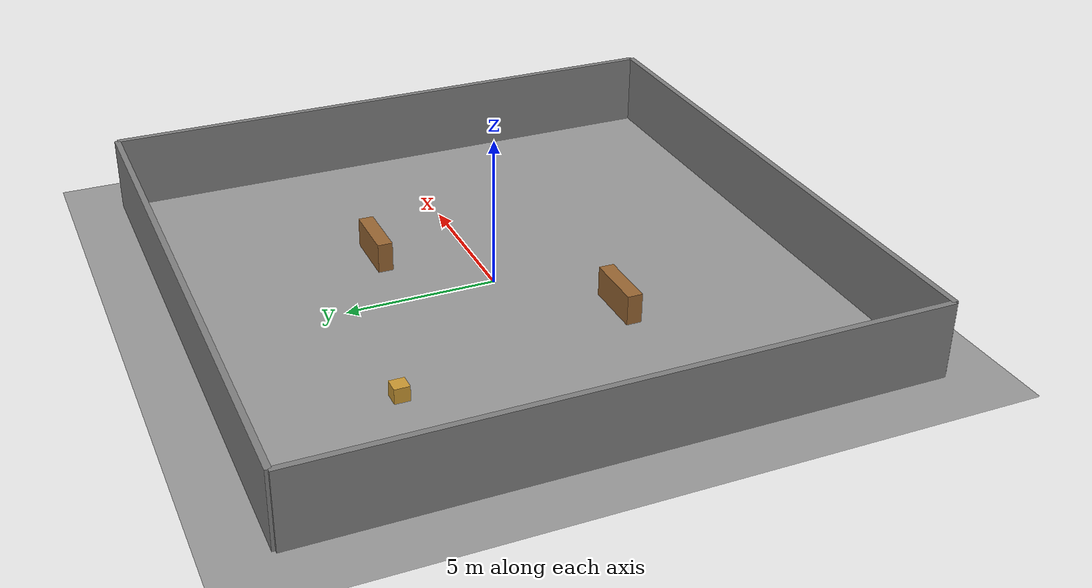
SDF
<?xml version="1.0" ?>
<sdf version="1.6">
  <world name="warehouse">
    <!-- Physics -->
    <physics type="ode">
      <real_time_update_rate>1000.0</real_time_update_rate>
      <max_step_size>0.001</max_step_size>
      <real_time_factor>1</real_time_factor>
    </physics>

    <!-- Scene -->
    <scene>
      <ambient>0.4 0.4 0.4 1</ambient>
      <background>0.7 0.7 0.7 1</background>
      <shadows>true</shadows>
    </scene>

    <!-- Light -->
    <light name="sun" type="directional">
      <cast_shadows>true</cast_shadows>
      <pose>0 0 10 0 0 0</pose>
      <diffuse>0.8 0.8 0.8 1</diffuse>
      <specular>0.2 0.2 0.2 1</specular>
      <direction>-0.5 0.1 -0.9</direction>
    </light>

    <!-- Indoor lights -->
    <light name="ceiling_light_1" type="point">
      <pose>5 5 3 0 0 0</pose>
      <diffuse>0.7 0.7 0.7 1</diffuse>
      <specular>0.1 0.1 0.1 1</specular>
      <attenuation>
        <range>20</range>
        <constant>0.5</constant>
        <linear>0.01</linear>
        <quadratic>0.001</quadratic>
      </attenuation>
    </light>

    <!-- Ground Plane -->
    <model name="ground_plane">
      <static>true</static>
      <link name="link">
        <collision name="collision">
          <geometry>
            <plane>
              <normal>0 0 1</normal>
              <size>20 20</size>
            </plane>
          </geometry>
          <surface>
            <friction>
              <ode>
                <mu>100</mu>
                <mu2>50</mu2>
              </ode>
            </friction>
          </surface>
        </collision>
        <visual name="visual">
          <geometry>
            <plane>
              <normal>0 0 1</normal>
              <size>20 20</size>
            </plane>
          </geometry>
          <material>
            <ambient>0.6 0.6 0.6 1</ambient>
            <diffuse>0.6 0.6 0.6 1</diffuse>
          </material>
        </visual>
      </link>
    </model>

    <!-- Walls -->
    <model name="wall_north">
      <static>true</static>
      <pose>0 10 1.25 0 0 0</pose>
      <link name="link">
        <collision name="collision">
          <geometry>
            <box><size>20 0.2 2.5</size></box>
          </geometry>
        </collision>
        <visual name="visual">
          <geometry>
            <box><size>20 0.2 2.5</size></box>
          </geometry>
          <material>
            <ambient>0.5 0.5 0.5 1</ambient>
          </material>
        </visual>
      </link>
    </model>

    <model name="wall_south">
      <static>true</static>
      <pose>0 -10 1.25 0 0 0</pose>
      <link name="link">
        <collision name="collision">
          <geometry>
            <box><size>20 0.2 2.5</size></box>
          </geometry>
        </collision>
        <visual name="visual">
          <geometry>
            <box><size>20 0.2 2.5</size></box>
          </geometry>
          <material>
            <ambient>0.5 0.5 0.5 1</ambient>
          </material>
        </visual>
      </link>
    </model>

    <model name="wall_east">
      <static>true</static>
      <pose>10 0 1.25 0 0 0</pose>
      <link name="link">
        <collision name="collision">
          <geometry>
            <box><size>0.2 20 2.5</size></box>
          </geometry>
        </collision>
        <visual name="visual">
          <geometry>
            <box><size>0.2 20 2.5</size></box>
          </geometry>
          <material>
            <ambient>0.5 0.5 0.5 1</ambient>
          </material>
        </visual>
      </link>
    </model>

    <model name="wall_west">
      <static>true</static>
      <pose>-10 0 1.25 0 0 0</pose>
      <link name="link">
        <collision name="collision">
          <geometry>
            <box><size>0.2 20 2.5</size></box>
          </geometry>
        </collision>
        <visual name="visual">
          <geometry>
            <box><size>0.2 20 2.5</size></box>
          </geometry>
          <material>
            <ambient>0.5 0.5 0.5 1</ambient>
          </material>
        </visual>
      </link>
    </model>

    <!-- Obstacles / Shelves -->
    <model name="shelf_1">
      <static>true</static>
      <pose>3 3 0.5 0 0 0</pose>
      <link name="link">
        <collision name="collision">
          <geometry>
            <box><size>2 0.5 1</size></box>
          </geometry>
        </collision>
        <visual name="visual">
          <geometry>
            <box><size>2 0.5 1</size></box>
          </geometry>
          <material>
            <ambient>0.6 0.4 0.2 1</ambient>
          </material>
        </visual>
      </link>
    </model>

    <model name="shelf_2">
      <static>true</static>
      <pose>-3 -3 0.5 0 0 0</pose>
      <link name="link">
        <collision name="collision">
          <geometry>
            <box><size>2 0.5 1</size></box>
          </geometry>
        </collision>
        <visual name="visual">
          <geometry>
            <box><size>2 0.5 1</size></box>
          </geometry>
          <material>
            <ambient>0.6 0.4 0.2 1</ambient>
          </material>
        </visual>
      </link>
    </model>

    <model name="box_1">
      <static>true</static>
      <pose>-5 5 0.25 0 0 0</pose>
      <link name="link">
        <collision name="collision">
          <geometry>
            <box><size>0.5 0.5 0.5</size></box>
          </geometry>
        </collision>
        <visual name="visual">
          <geometry>
            <box><size>0.5 0.5 0.5</size></box>
          </geometry>
          <material>
            <ambient>0.8 0.6 0.2 1</ambient>
          </material>
        </visual>
      </link>
    </model>

    <!-- Plugins -->
    <plugin name="gazebo_ros_state" filename="libgazebo_ros_state.so">
      <ros>
        <namespace>/gazebo</namespace>
      </ros>
      <update_rate>50.0</update_rate>
    </plugin>

  </world>
</sdf>
